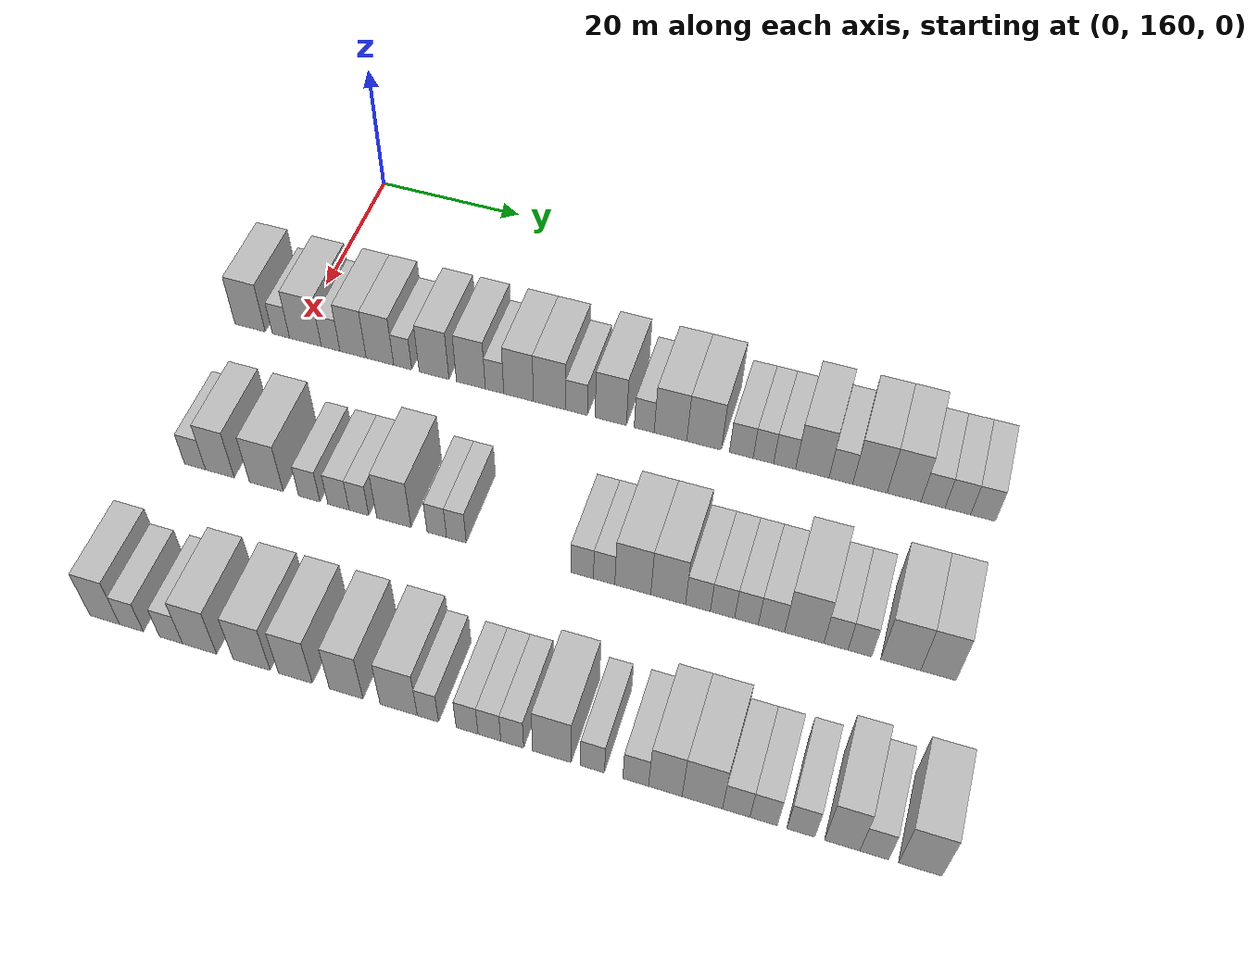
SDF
<sdf version="1.6">
 <world name="default">
  <model name="building_93">
   <static>1</static>
   <pose>25.0000 153.6073 0 0.000000 0.000000 0.000000</pose>
   <link name="link">
    <pose>0 0 4.50 0 0 0</pose>
    <collision name="collision"><geometry><box><size>10.0000 4.3053 9.0000</size></box></geometry></collision>
    <visual name="visual">
     <cast_shadows>0</cast_shadows>
     <geometry><box><size>10.0000 4.3053 9.0000</size></box></geometry>
     <material>
      <script>
       <uri>model://HANNAS_wall/materials/scripts</uri>
       <uri>model://HANNAS_wall/materials/textures</uri>
       <name>vrc/HANNAS_wall</name>
      </script>
     </material>
    </visual>
   </link>
  </model>
  <model name="building_94">
   <static>1</static>
   <pose>25.0000 157.9676 0 0.000000 0.000000 0.000000</pose>
   <link name="link">
    <pose>0 0 3.00 0 0 0</pose>
    <collision name="collision"><geometry><box><size>10.0000 2.4155 6.0000</size></box></geometry></collision>
    <visual name="visual">
     <cast_shadows>0</cast_shadows>
     <geometry><box><size>10.0000 2.4155 6.0000</size></box></geometry>
     <material>
      <script>
       <uri>model://HANNAS_wall/materials/scripts</uri>
       <uri>model://HANNAS_wall/materials/textures</uri>
       <name>vrc/HANNAS_wall</name>
      </script>
     </material>
    </visual>
   </link>
  </model>
  <model name="building_95">
   <static>1</static>
   <pose>25.0000 161.3960 0 0.000000 0.000000 0.000000</pose>
   <link name="link">
    <pose>0 0 4.50 0 0 0</pose>
    <collision name="collision"><geometry><box><size>10.0000 4.4412 9.0000</size></box></geometry></collision>
    <visual name="visual">
     <cast_shadows>0</cast_shadows>
     <geometry><box><size>10.0000 4.4412 9.0000</size></box></geometry>
     <material>
      <script>
       <uri>model://HANNAS_wall/materials/scripts</uri>
       <uri>model://HANNAS_wall/materials/textures</uri>
       <name>vrc/HANNAS_wall</name>
      </script>
     </material>
    </visual>
   </link>
  </model>
  <model name="building_96">
   <static>1</static>
   <pose>25.0000 164.9149 0 0.000000 0.000000 0.000000</pose>
   <link name="link">
    <pose>0 0 3.00 0 0 0</pose>
    <collision name="collision"><geometry><box><size>10.0000 2.5966 6.0000</size></box></geometry></collision>
    <visual name="visual">
     <cast_shadows>0</cast_shadows>
     <geometry><box><size>10.0000 2.5966 6.0000</size></box></geometry>
     <material>
      <script>
       <uri>model://HANNAS_wall/materials/scripts</uri>
       <uri>model://HANNAS_wall/materials/textures</uri>
       <name>vrc/HANNAS_wall</name>
      </script>
     </material>
    </visual>
   </link>
  </model>
  <model name="building_97">
   <static>1</static>
   <pose>25.0000 168.0224 0 0.000000 0.000000 0.000000</pose>
   <link name="link">
    <pose>0 0 4.50 0 0 0</pose>
    <collision name="collision"><geometry><box><size>10.0000 3.6184 9.0000</size></box></geometry></collision>
    <visual name="visual">
     <cast_shadows>0</cast_shadows>
     <geometry><box><size>10.0000 3.6184 9.0000</size></box></geometry>
     <material>
      <script>
       <uri>model://HANNAS_wall/materials/scripts</uri>
       <uri>model://HANNAS_wall/materials/textures</uri>
       <name>vrc/HANNAS_wall</name>
      </script>
     </material>
    </visual>
   </link>
  </model>
  <model name="building_98">
   <static>1</static>
   <pose>25.0000 171.7162 0 0.000000 0.000000 0.000000</pose>
   <link name="link">
    <pose>0 0 4.50 0 0 0</pose>
    <collision name="collision"><geometry><box><size>10.0000 3.7693 9.0000</size></box></geometry></collision>
    <visual name="visual">
     <cast_shadows>0</cast_shadows>
     <geometry><box><size>10.0000 3.7693 9.0000</size></box></geometry>
     <material>
      <script>
       <uri>model://HANNAS_wall/materials/scripts</uri>
       <uri>model://HANNAS_wall/materials/textures</uri>
       <name>vrc/HANNAS_wall</name>
      </script>
     </material>
    </visual>
   </link>
  </model>
  <model name="building_99">
   <static>1</static>
   <pose>25.0000 174.8299 0 0.000000 0.000000 0.000000</pose>
   <link name="link">
    <pose>0 0 3.00 0 0 0</pose>
    <collision name="collision"><geometry><box><size>10.0000 2.4581 6.0000</size></box></geometry></collision>
    <visual name="visual">
     <cast_shadows>0</cast_shadows>
     <geometry><box><size>10.0000 2.4581 6.0000</size></box></geometry>
     <material>
      <script>
       <uri>model://HANNAS_wall/materials/scripts</uri>
       <uri>model://HANNAS_wall/materials/textures</uri>
       <name>vrc/HANNAS_wall</name>
      </script>
     </material>
    </visual>
   </link>
  </model>
  <model name="building_100">
   <static>1</static>
   <pose>25.0000 179.0702 0 0.000000 0.000000 0.000000</pose>
   <link name="link">
    <pose>0 0 4.50 0 0 0</pose>
    <collision name="collision"><geometry><box><size>10.0000 4.0226 9.0000</size></box></geometry></collision>
    <visual name="visual">
     <cast_shadows>0</cast_shadows>
     <geometry><box><size>10.0000 4.0226 9.0000</size></box></geometry>
     <material>
      <script>
       <uri>model://HANNAS_wall/materials/scripts</uri>
       <uri>model://HANNAS_wall/materials/textures</uri>
       <name>vrc/HANNAS_wall</name>
      </script>
     </material>
    </visual>
   </link>
  </model>
  <model name="building_101">
   <static>1</static>
   <pose>25.0000 184.0114 0 0.000000 0.000000 0.000000</pose>
   <link name="link">
    <pose>0 0 4.50 0 0 0</pose>
    <collision name="collision"><geometry><box><size>10.0000 3.8598 9.0000</size></box></geometry></collision>
    <visual name="visual">
     <cast_shadows>0</cast_shadows>
     <geometry><box><size>10.0000 3.8598 9.0000</size></box></geometry>
     <material>
      <script>
       <uri>model://HANNAS_wall/materials/scripts</uri>
       <uri>model://HANNAS_wall/materials/textures</uri>
       <name>vrc/HANNAS_wall</name>
      </script>
     </material>
    </visual>
   </link>
  </model>
  <model name="building_102">
   <static>1</static>
   <pose>25.0000 187.1695 0 0.000000 0.000000 0.000000</pose>
   <link name="link">
    <pose>0 0 3.00 0 0 0</pose>
    <collision name="collision"><geometry><box><size>10.0000 2.4564 6.0000</size></box></geometry></collision>
    <visual name="visual">
     <cast_shadows>0</cast_shadows>
     <geometry><box><size>10.0000 2.4564 6.0000</size></box></geometry>
     <material>
      <script>
       <uri>model://HANNAS_wall/materials/scripts</uri>
       <uri>model://HANNAS_wall/materials/textures</uri>
       <name>vrc/HANNAS_wall</name>
      </script>
     </material>
    </visual>
   </link>
  </model>
  <model name="building_103">
   <static>1</static>
   <pose>25.0000 190.3546 0 0.000000 0.000000 0.000000</pose>
   <link name="link">
    <pose>0 0 4.50 0 0 0</pose>
    <collision name="collision"><geometry><box><size>10.0000 3.9138 9.0000</size></box></geometry></collision>
    <visual name="visual">
     <cast_shadows>0</cast_shadows>
     <geometry><box><size>10.0000 3.9138 9.0000</size></box></geometry>
     <material>
      <script>
       <uri>model://HANNAS_wall/materials/scripts</uri>
       <uri>model://HANNAS_wall/materials/textures</uri>
       <name>vrc/HANNAS_wall</name>
      </script>
     </material>
    </visual>
   </link>
  </model>
  <model name="building_104">
   <static>1</static>
   <pose>25.0000 194.4330 0 0.000000 0.000000 0.000000</pose>
   <link name="link">
    <pose>0 0 4.50 0 0 0</pose>
    <collision name="collision"><geometry><box><size>10.0000 4.2428 9.0000</size></box></geometry></collision>
    <visual name="visual">
     <cast_shadows>0</cast_shadows>
     <geometry><box><size>10.0000 4.2428 9.0000</size></box></geometry>
     <material>
      <script>
       <uri>model://HANNAS_wall/materials/scripts</uri>
       <uri>model://HANNAS_wall/materials/textures</uri>
       <name>vrc/HANNAS_wall</name>
      </script>
     </material>
    </visual>
   </link>
  </model>
  <model name="building_105">
   <static>1</static>
   <pose>25.0000 197.9500 0 0.000000 0.000000 0.000000</pose>
   <link name="link">
    <pose>0 0 3.00 0 0 0</pose>
    <collision name="collision"><geometry><box><size>10.0000 2.7911 6.0000</size></box></geometry></collision>
    <visual name="visual">
     <cast_shadows>0</cast_shadows>
     <geometry><box><size>10.0000 2.7911 6.0000</size></box></geometry>
     <material>
      <script>
       <uri>model://HANNAS_wall/materials/scripts</uri>
       <uri>model://HANNAS_wall/materials/textures</uri>
       <name>vrc/HANNAS_wall</name>
      </script>
     </material>
    </visual>
   </link>
  </model>
  <model name="building_106">
   <static>1</static>
   <pose>25.0000 202.3600 0 0.000000 0.000000 0.000000</pose>
   <link name="link">
    <pose>0 0 4.50 0 0 0</pose>
    <collision name="collision"><geometry><box><size>10.0000 4.0289 9.0000</size></box></geometry></collision>
    <visual name="visual">
     <cast_shadows>0</cast_shadows>
     <geometry><box><size>10.0000 4.0289 9.0000</size></box></geometry>
     <material>
      <script>
       <uri>model://HANNAS_wall/materials/scripts</uri>
       <uri>model://HANNAS_wall/materials/textures</uri>
       <name>vrc/HANNAS_wall</name>
      </script>
     </material>
    </visual>
   </link>
  </model>
  <model name="building_107">
   <static>1</static>
   <pose>25.0000 206.6499 0 0.000000 0.000000 0.000000</pose>
   <link name="link">
    <pose>0 0 3.00 0 0 0</pose>
    <collision name="collision"><geometry><box><size>10.0000 2.5511 6.0000</size></box></geometry></collision>
    <visual name="visual">
     <cast_shadows>0</cast_shadows>
     <geometry><box><size>10.0000 2.5511 6.0000</size></box></geometry>
     <material>
      <script>
       <uri>model://HANNAS_wall/materials/scripts</uri>
       <uri>model://HANNAS_wall/materials/textures</uri>
       <name>vrc/HANNAS_wall</name>
      </script>
     </material>
    </visual>
   </link>
  </model>
  <model name="building_108">
   <static>1</static>
   <pose>25.0000 209.9910 0 0.000000 0.000000 0.000000</pose>
   <link name="link">
    <pose>0 0 4.50 0 0 0</pose>
    <collision name="collision"><geometry><box><size>10.0000 4.1310 9.0000</size></box></geometry></collision>
    <visual name="visual">
     <cast_shadows>0</cast_shadows>
     <geometry><box><size>10.0000 4.1310 9.0000</size></box></geometry>
     <material>
      <script>
       <uri>model://HANNAS_wall/materials/scripts</uri>
       <uri>model://HANNAS_wall/materials/textures</uri>
       <name>vrc/HANNAS_wall</name>
      </script>
     </material>
    </visual>
   </link>
  </model>
  <model name="building_109">
   <static>1</static>
   <pose>25.0000 214.2285 0 0.000000 0.000000 0.000000</pose>
   <link name="link">
    <pose>0 0 4.50 0 0 0</pose>
    <collision name="collision"><geometry><box><size>10.0000 4.3439 9.0000</size></box></geometry></collision>
    <visual name="visual">
     <cast_shadows>0</cast_shadows>
     <geometry><box><size>10.0000 4.3439 9.0000</size></box></geometry>
     <material>
      <script>
       <uri>model://HANNAS_wall/materials/scripts</uri>
       <uri>model://HANNAS_wall/materials/textures</uri>
       <name>vrc/HANNAS_wall</name>
      </script>
     </material>
    </visual>
   </link>
  </model>
  <model name="building_110">
   <static>1</static>
   <pose>25.0000 218.8751 0 0.000000 0.000000 0.000000</pose>
   <link name="link">
    <pose>0 0 3.00 0 0 0</pose>
    <collision name="collision"><geometry><box><size>10.0000 2.9495 6.0000</size></box></geometry></collision>
    <visual name="visual">
     <cast_shadows>0</cast_shadows>
     <geometry><box><size>10.0000 2.9495 6.0000</size></box></geometry>
     <material>
      <script>
       <uri>model://HANNAS_wall/materials/scripts</uri>
       <uri>model://HANNAS_wall/materials/textures</uri>
       <name>vrc/HANNAS_wall</name>
      </script>
     </material>
    </visual>
   </link>
  </model>
  <model name="building_111">
   <static>1</static>
   <pose>25.0000 221.6177 0 0.000000 0.000000 0.000000</pose>
   <link name="link">
    <pose>0 0 3.00 0 0 0</pose>
    <collision name="collision"><geometry><box><size>10.0000 2.5356 6.0000</size></box></geometry></collision>
    <visual name="visual">
     <cast_shadows>0</cast_shadows>
     <geometry><box><size>10.0000 2.5356 6.0000</size></box></geometry>
     <material>
      <script>
       <uri>model://HANNAS_wall/materials/scripts</uri>
       <uri>model://HANNAS_wall/materials/textures</uri>
       <name>vrc/HANNAS_wall</name>
      </script>
     </material>
    </visual>
   </link>
  </model>
  <model name="building_112">
   <static>1</static>
   <pose>25.0000 224.2377 0 0.000000 0.000000 0.000000</pose>
   <link name="link">
    <pose>0 0 3.00 0 0 0</pose>
    <collision name="collision"><geometry><box><size>10.0000 2.7045 6.0000</size></box></geometry></collision>
    <visual name="visual">
     <cast_shadows>0</cast_shadows>
     <geometry><box><size>10.0000 2.7045 6.0000</size></box></geometry>
     <material>
      <script>
       <uri>model://HANNAS_wall/materials/scripts</uri>
       <uri>model://HANNAS_wall/materials/textures</uri>
       <name>vrc/HANNAS_wall</name>
      </script>
     </material>
    </visual>
   </link>
  </model>
  <model name="building_113">
   <static>1</static>
   <pose>25.0000 227.6396 0 0.000000 0.000000 0.000000</pose>
   <link name="link">
    <pose>0 0 4.50 0 0 0</pose>
    <collision name="collision"><geometry><box><size>10.0000 4.0994 9.0000</size></box></geometry></collision>
    <visual name="visual">
     <cast_shadows>0</cast_shadows>
     <geometry><box><size>10.0000 4.0994 9.0000</size></box></geometry>
     <material>
      <script>
       <uri>model://HANNAS_wall/materials/scripts</uri>
       <uri>model://HANNAS_wall/materials/textures</uri>
       <name>vrc/HANNAS_wall</name>
      </script>
     </material>
    </visual>
   </link>
  </model>
  <model name="building_114">
   <static>1</static>
   <pose>25.0000 231.1255 0 0.000000 0.000000 0.000000</pose>
   <link name="link">
    <pose>0 0 3.00 0 0 0</pose>
    <collision name="collision"><geometry><box><size>10.0000 2.8724 6.0000</size></box></geometry></collision>
    <visual name="visual">
     <cast_shadows>0</cast_shadows>
     <geometry><box><size>10.0000 2.8724 6.0000</size></box></geometry>
     <material>
      <script>
       <uri>model://HANNAS_wall/materials/scripts</uri>
       <uri>model://HANNAS_wall/materials/textures</uri>
       <name>vrc/HANNAS_wall</name>
      </script>
     </material>
    </visual>
   </link>
  </model>
  <model name="building_115">
   <static>1</static>
   <pose>25.0000 234.6354 0 0.000000 0.000000 0.000000</pose>
   <link name="link">
    <pose>0 0 4.50 0 0 0</pose>
    <collision name="collision"><geometry><box><size>10.0000 4.1475 9.0000</size></box></geometry></collision>
    <visual name="visual">
     <cast_shadows>0</cast_shadows>
     <geometry><box><size>10.0000 4.1475 9.0000</size></box></geometry>
     <material>
      <script>
       <uri>model://HANNAS_wall/materials/scripts</uri>
       <uri>model://HANNAS_wall/materials/textures</uri>
       <name>vrc/HANNAS_wall</name>
      </script>
     </material>
    </visual>
   </link>
  </model>
  <model name="building_116">
   <static>1</static>
   <pose>25.0000 238.7324 0 0.000000 0.000000 0.000000</pose>
   <link name="link">
    <pose>0 0 4.50 0 0 0</pose>
    <collision name="collision"><geometry><box><size>10.0000 4.0464 9.0000</size></box></geometry></collision>
    <visual name="visual">
     <cast_shadows>0</cast_shadows>
     <geometry><box><size>10.0000 4.0464 9.0000</size></box></geometry>
     <material>
      <script>
       <uri>model://HANNAS_wall/materials/scripts</uri>
       <uri>model://HANNAS_wall/materials/textures</uri>
       <name>vrc/HANNAS_wall</name>
      </script>
     </material>
    </visual>
   </link>
  </model>
  <model name="building_117">
   <static>1</static>
   <pose>25.0000 242.1766 0 0.000000 0.000000 0.000000</pose>
   <link name="link">
    <pose>0 0 3.00 0 0 0</pose>
    <collision name="collision"><geometry><box><size>10.0000 2.8420 6.0000</size></box></geometry></collision>
    <visual name="visual">
     <cast_shadows>0</cast_shadows>
     <geometry><box><size>10.0000 2.8420 6.0000</size></box></geometry>
     <material>
      <script>
       <uri>model://HANNAS_wall/materials/scripts</uri>
       <uri>model://HANNAS_wall/materials/textures</uri>
       <name>vrc/HANNAS_wall</name>
      </script>
     </material>
    </visual>
   </link>
  </model>
  <model name="building_118">
   <static>1</static>
   <pose>25.0000 245.0969 0 0.000000 0.000000 0.000000</pose>
   <link name="link">
    <pose>0 0 3.00 0 0 0</pose>
    <collision name="collision"><geometry><box><size>10.0000 2.9987 6.0000</size></box></geometry></collision>
    <visual name="visual">
     <cast_shadows>0</cast_shadows>
     <geometry><box><size>10.0000 2.9987 6.0000</size></box></geometry>
     <material>
      <script>
       <uri>model://HANNAS_wall/materials/scripts</uri>
       <uri>model://HANNAS_wall/materials/textures</uri>
       <name>vrc/HANNAS_wall</name>
      </script>
     </material>
    </visual>
   </link>
  </model>
  <model name="building_119">
   <static>1</static>
   <pose>25.0000 248.0613 0 0.000000 0.000000 0.000000</pose>
   <link name="link">
    <pose>0 0 3.00 0 0 0</pose>
    <collision name="collision"><geometry><box><size>10.0000 2.9300 6.0000</size></box></geometry></collision>
    <visual name="visual">
     <cast_shadows>0</cast_shadows>
     <geometry><box><size>10.0000 2.9300 6.0000</size></box></geometry>
     <material>
      <script>
       <uri>model://HANNAS_wall/materials/scripts</uri>
       <uri>model://HANNAS_wall/materials/textures</uri>
       <name>vrc/HANNAS_wall</name>
      </script>
     </material>
    </visual>
   </link>
  </model>
  <model name="building_217">
   <static>1</static>
   <pose>47.0000 156.7697 0 0.000000 0.000000 0.000000</pose>
   <link name="link">
    <pose>0 0 3.00 0 0 0</pose>
    <collision name="collision"><geometry><box><size>10.0000 2.7998 6.0000</size></box></geometry></collision>
    <visual name="visual">
     <cast_shadows>0</cast_shadows>
     <geometry><box><size>10.0000 2.7998 6.0000</size></box></geometry>
     <material>
      <script>
       <uri>model://HANNAS_wall/materials/scripts</uri>
       <uri>model://HANNAS_wall/materials/textures</uri>
       <name>vrc/HANNAS_wall</name>
      </script>
     </material>
    </visual>
   </link>
  </model>
  <model name="building_218">
   <static>1</static>
   <pose>47.0000 160.0620 0 0.000000 0.000000 0.000000</pose>
   <link name="link">
    <pose>0 0 4.50 0 0 0</pose>
    <collision name="collision"><geometry><box><size>10.0000 3.7848 9.0000</size></box></geometry></collision>
    <visual name="visual">
     <cast_shadows>0</cast_shadows>
     <geometry><box><size>10.0000 3.7848 9.0000</size></box></geometry>
     <material>
      <script>
       <uri>model://HANNAS_wall/materials/scripts</uri>
       <uri>model://HANNAS_wall/materials/textures</uri>
       <name>vrc/HANNAS_wall</name>
      </script>
     </material>
    </visual>
   </link>
  </model>
  <model name="building_219">
   <static>1</static>
   <pose>47.0000 166.1638 0 0.000000 0.000000 0.000000</pose>
   <link name="link">
    <pose>0 0 4.50 0 0 0</pose>
    <collision name="collision"><geometry><box><size>10.0000 4.4187 9.0000</size></box></geometry></collision>
    <visual name="visual">
     <cast_shadows>0</cast_shadows>
     <geometry><box><size>10.0000 4.4187 9.0000</size></box></geometry>
     <material>
      <script>
       <uri>model://HANNAS_wall/materials/scripts</uri>
       <uri>model://HANNAS_wall/materials/textures</uri>
       <name>vrc/HANNAS_wall</name>
      </script>
     </material>
    </visual>
   </link>
  </model>
  <model name="building_220">
   <static>1</static>
   <pose>47.0000 171.7502 0 0.000000 0.000000 0.000000</pose>
   <link name="link">
    <pose>0 0 3.00 0 0 0</pose>
    <collision name="collision"><geometry><box><size>10.0000 2.7543 6.0000</size></box></geometry></collision>
    <visual name="visual">
     <cast_shadows>0</cast_shadows>
     <geometry><box><size>10.0000 2.7543 6.0000</size></box></geometry>
     <material>
      <script>
       <uri>model://HANNAS_wall/materials/scripts</uri>
       <uri>model://HANNAS_wall/materials/textures</uri>
       <name>vrc/HANNAS_wall</name>
      </script>
     </material>
    </visual>
   </link>
  </model>
  <model name="building_221">
   <static>1</static>
   <pose>47.0000 175.4920 0 0.000000 0.000000 0.000000</pose>
   <link name="link">
    <pose>0 0 3.00 0 0 0</pose>
    <collision name="collision"><geometry><box><size>10.0000 2.7292 6.0000</size></box></geometry></collision>
    <visual name="visual">
     <cast_shadows>0</cast_shadows>
     <geometry><box><size>10.0000 2.7292 6.0000</size></box></geometry>
     <material>
      <script>
       <uri>model://HANNAS_wall/materials/scripts</uri>
       <uri>model://HANNAS_wall/materials/textures</uri>
       <name>vrc/HANNAS_wall</name>
      </script>
     </material>
    </visual>
   </link>
  </model>
  <model name="building_222">
   <static>1</static>
   <pose>47.0000 178.1100 0 0.000000 0.000000 0.000000</pose>
   <link name="link">
    <pose>0 0 3.00 0 0 0</pose>
    <collision name="collision"><geometry><box><size>10.0000 2.5068 6.0000</size></box></geometry></collision>
    <visual name="visual">
     <cast_shadows>0</cast_shadows>
     <geometry><box><size>10.0000 2.5068 6.0000</size></box></geometry>
     <material>
      <script>
       <uri>model://HANNAS_wall/materials/scripts</uri>
       <uri>model://HANNAS_wall/materials/textures</uri>
       <name>vrc/HANNAS_wall</name>
      </script>
     </material>
    </visual>
   </link>
  </model>
  <model name="building_223">
   <static>1</static>
   <pose>47.0000 182.5260 0 0.000000 0.000000 0.000000</pose>
   <link name="link">
    <pose>0 0 4.50 0 0 0</pose>
    <collision name="collision"><geometry><box><size>10.0000 4.3251 9.0000</size></box></geometry></collision>
    <visual name="visual">
     <cast_shadows>0</cast_shadows>
     <geometry><box><size>10.0000 4.3251 9.0000</size></box></geometry>
     <material>
      <script>
       <uri>model://HANNAS_wall/materials/scripts</uri>
       <uri>model://HANNAS_wall/materials/textures</uri>
       <name>vrc/HANNAS_wall</name>
      </script>
     </material>
    </visual>
   </link>
  </model>
  <model name="building_224">
   <static>1</static>
   <pose>47.0000 187.9058 0 0.000000 0.000000 0.000000</pose>
   <link name="link">
    <pose>0 0 3.00 0 0 0</pose>
    <collision name="collision"><geometry><box><size>10.0000 2.4345 6.0000</size></box></geometry></collision>
    <visual name="visual">
     <cast_shadows>0</cast_shadows>
     <geometry><box><size>10.0000 2.4345 6.0000</size></box></geometry>
     <material>
      <script>
       <uri>model://HANNAS_wall/materials/scripts</uri>
       <uri>model://HANNAS_wall/materials/textures</uri>
       <name>vrc/HANNAS_wall</name>
      </script>
     </material>
    </visual>
   </link>
  </model>
  <model name="building_225">
   <static>1</static>
   <pose>47.0000 190.3425 0 0.000000 0.000000 0.000000</pose>
   <link name="link">
    <pose>0 0 3.00 0 0 0</pose>
    <collision name="collision"><geometry><box><size>10.0000 2.4389 6.0000</size></box></geometry></collision>
    <visual name="visual">
     <cast_shadows>0</cast_shadows>
     <geometry><box><size>10.0000 2.4389 6.0000</size></box></geometry>
     <material>
      <script>
       <uri>model://HANNAS_wall/materials/scripts</uri>
       <uri>model://HANNAS_wall/materials/textures</uri>
       <name>vrc/HANNAS_wall</name>
      </script>
     </material>
    </visual>
   </link>
  </model>
  <model name="building_226">
   <static>1</static>
   <pose>47.0000 205.6538 0 0.000000 0.000000 0.000000</pose>
   <link name="link">
    <pose>0 0 3.00 0 0 0</pose>
    <collision name="collision"><geometry><box><size>10.0000 2.7279 6.0000</size></box></geometry></collision>
    <visual name="visual">
     <cast_shadows>0</cast_shadows>
     <geometry><box><size>10.0000 2.7279 6.0000</size></box></geometry>
     <material>
      <script>
       <uri>model://HANNAS_wall/materials/scripts</uri>
       <uri>model://HANNAS_wall/materials/textures</uri>
       <name>vrc/HANNAS_wall</name>
      </script>
     </material>
    </visual>
   </link>
  </model>
  <model name="building_227">
   <static>1</static>
   <pose>47.0000 208.2862 0 0.000000 0.000000 0.000000</pose>
   <link name="link">
    <pose>0 0 3.00 0 0 0</pose>
    <collision name="collision"><geometry><box><size>10.0000 2.5370 6.0000</size></box></geometry></collision>
    <visual name="visual">
     <cast_shadows>0</cast_shadows>
     <geometry><box><size>10.0000 2.5370 6.0000</size></box></geometry>
     <material>
      <script>
       <uri>model://HANNAS_wall/materials/scripts</uri>
       <uri>model://HANNAS_wall/materials/textures</uri>
       <name>vrc/HANNAS_wall</name>
      </script>
     </material>
    </visual>
   </link>
  </model>
  <model name="building_228">
   <static>1</static>
   <pose>47.0000 211.6857 0 0.000000 0.000000 0.000000</pose>
   <link name="link">
    <pose>0 0 4.50 0 0 0</pose>
    <collision name="collision"><geometry><box><size>10.0000 4.2620 9.0000</size></box></geometry></collision>
    <visual name="visual">
     <cast_shadows>0</cast_shadows>
     <geometry><box><size>10.0000 4.2620 9.0000</size></box></geometry>
     <material>
      <script>
       <uri>model://HANNAS_wall/materials/scripts</uri>
       <uri>model://HANNAS_wall/materials/textures</uri>
       <name>vrc/HANNAS_wall</name>
      </script>
     </material>
    </visual>
   </link>
  </model>
  <model name="building_229">
   <static>1</static>
   <pose>47.0000 215.8473 0 0.000000 0.000000 0.000000</pose>
   <link name="link">
    <pose>0 0 4.50 0 0 0</pose>
    <collision name="collision"><geometry><box><size>10.0000 4.0613 9.0000</size></box></geometry></collision>
    <visual name="visual">
     <cast_shadows>0</cast_shadows>
     <geometry><box><size>10.0000 4.0613 9.0000</size></box></geometry>
     <material>
      <script>
       <uri>model://HANNAS_wall/materials/scripts</uri>
       <uri>model://HANNAS_wall/materials/textures</uri>
       <name>vrc/HANNAS_wall</name>
      </script>
     </material>
    </visual>
   </link>
  </model>
  <model name="building_230">
   <static>1</static>
   <pose>47.0000 219.3256 0 0.000000 0.000000 0.000000</pose>
   <link name="link">
    <pose>0 0 3.00 0 0 0</pose>
    <collision name="collision"><geometry><box><size>10.0000 2.8952 6.0000</size></box></geometry></collision>
    <visual name="visual">
     <cast_shadows>0</cast_shadows>
     <geometry><box><size>10.0000 2.8952 6.0000</size></box></geometry>
     <material>
      <script>
       <uri>model://HANNAS_wall/materials/scripts</uri>
       <uri>model://HANNAS_wall/materials/textures</uri>
       <name>vrc/HANNAS_wall</name>
      </script>
     </material>
    </visual>
   </link>
  </model>
  <model name="building_231">
   <static>1</static>
   <pose>47.0000 222.1787 0 0.000000 0.000000 0.000000</pose>
   <link name="link">
    <pose>0 0 3.00 0 0 0</pose>
    <collision name="collision"><geometry><box><size>10.0000 2.8109 6.0000</size></box></geometry></collision>
    <visual name="visual">
     <cast_shadows>0</cast_shadows>
     <geometry><box><size>10.0000 2.8109 6.0000</size></box></geometry>
     <material>
      <script>
       <uri>model://HANNAS_wall/materials/scripts</uri>
       <uri>model://HANNAS_wall/materials/textures</uri>
       <name>vrc/HANNAS_wall</name>
      </script>
     </material>
    </visual>
   </link>
  </model>
  <model name="building_232">
   <static>1</static>
   <pose>47.0000 224.9382 0 0.000000 0.000000 0.000000</pose>
   <link name="link">
    <pose>0 0 3.00 0 0 0</pose>
    <collision name="collision"><geometry><box><size>10.0000 2.7080 6.0000</size></box></geometry></collision>
    <visual name="visual">
     <cast_shadows>0</cast_shadows>
     <geometry><box><size>10.0000 2.7080 6.0000</size></box></geometry>
     <material>
      <script>
       <uri>model://HANNAS_wall/materials/scripts</uri>
       <uri>model://HANNAS_wall/materials/textures</uri>
       <name>vrc/HANNAS_wall</name>
      </script>
     </material>
    </visual>
   </link>
  </model>
  <model name="building_233">
   <static>1</static>
   <pose>47.0000 227.7920 0 0.000000 0.000000 0.000000</pose>
   <link name="link">
    <pose>0 0 3.00 0 0 0</pose>
    <collision name="collision"><geometry><box><size>10.0000 2.9997 6.0000</size></box></geometry></collision>
    <visual name="visual">
     <cast_shadows>0</cast_shadows>
     <geometry><box><size>10.0000 2.9997 6.0000</size></box></geometry>
     <material>
      <script>
       <uri>model://HANNAS_wall/materials/scripts</uri>
       <uri>model://HANNAS_wall/materials/textures</uri>
       <name>vrc/HANNAS_wall</name>
      </script>
     </material>
    </visual>
   </link>
  </model>
  <model name="building_234">
   <static>1</static>
   <pose>47.0000 231.5175 0 0.000000 0.000000 0.000000</pose>
   <link name="link">
    <pose>0 0 4.50 0 0 0</pose>
    <collision name="collision"><geometry><box><size>10.0000 4.4513 9.0000</size></box></geometry></collision>
    <visual name="visual">
     <cast_shadows>0</cast_shadows>
     <geometry><box><size>10.0000 4.4513 9.0000</size></box></geometry>
     <material>
      <script>
       <uri>model://HANNAS_wall/materials/scripts</uri>
       <uri>model://HANNAS_wall/materials/textures</uri>
       <name>vrc/HANNAS_wall</name>
      </script>
     </material>
    </visual>
   </link>
  </model>
  <model name="building_235">
   <static>1</static>
   <pose>47.0000 235.0952 0 0.000000 0.000000 0.000000</pose>
   <link name="link">
    <pose>0 0 3.00 0 0 0</pose>
    <collision name="collision"><geometry><box><size>10.0000 2.7040 6.0000</size></box></geometry></collision>
    <visual name="visual">
     <cast_shadows>0</cast_shadows>
     <geometry><box><size>10.0000 2.7040 6.0000</size></box></geometry>
     <material>
      <script>
       <uri>model://HANNAS_wall/materials/scripts</uri>
       <uri>model://HANNAS_wall/materials/textures</uri>
       <name>vrc/HANNAS_wall</name>
      </script>
     </material>
    </visual>
   </link>
  </model>
  <model name="building_236">
   <static>1</static>
   <pose>47.0000 237.7770 0 0.000000 0.000000 0.000000</pose>
   <link name="link">
    <pose>0 0 3.00 0 0 0</pose>
    <collision name="collision"><geometry><box><size>10.0000 2.6598 6.0000</size></box></geometry></collision>
    <visual name="visual">
     <cast_shadows>0</cast_shadows>
     <geometry><box><size>10.0000 2.6598 6.0000</size></box></geometry>
     <material>
      <script>
       <uri>model://HANNAS_wall/materials/scripts</uri>
       <uri>model://HANNAS_wall/materials/textures</uri>
       <name>vrc/HANNAS_wall</name>
      </script>
     </material>
    </visual>
   </link>
  </model>
  <model name="building_237">
   <static>1</static>
   <pose>47.0000 242.3137 0 0.000000 0.000000 0.000000</pose>
   <link name="link">
    <pose>0 0 4.50 0 0 0</pose>
    <collision name="collision"><geometry><box><size>10.0000 4.4136 9.0000</size></box></geometry></collision>
    <visual name="visual">
     <cast_shadows>0</cast_shadows>
     <geometry><box><size>10.0000 4.4136 9.0000</size></box></geometry>
     <material>
      <script>
       <uri>model://HANNAS_wall/materials/scripts</uri>
       <uri>model://HANNAS_wall/materials/textures</uri>
       <name>vrc/HANNAS_wall</name>
      </script>
     </material>
    </visual>
   </link>
  </model>
  <model name="building_238">
   <static>1</static>
   <pose>47.0000 246.4556 0 0.000000 0.000000 0.000000</pose>
   <link name="link">
    <pose>0 0 4.50 0 0 0</pose>
    <collision name="collision"><geometry><box><size>10.0000 3.8701 9.0000</size></box></geometry></collision>
    <visual name="visual">
     <cast_shadows>0</cast_shadows>
     <geometry><box><size>10.0000 3.8701 9.0000</size></box></geometry>
     <material>
      <script>
       <uri>model://HANNAS_wall/materials/scripts</uri>
       <uri>model://HANNAS_wall/materials/textures</uri>
       <name>vrc/HANNAS_wall</name>
      </script>
     </material>
    </visual>
   </link>
  </model>
  <model name="building_339">
   <static>1</static>
   <pose>69.0000 156.6417 0 0.000000 0.000000 0.000000</pose>
   <link name="link">
    <pose>0 0 4.50 0 0 0</pose>
    <collision name="collision"><geometry><box><size>10.0000 3.7321 9.0000</size></box></geometry></collision>
    <visual name="visual">
     <cast_shadows>0</cast_shadows>
     <geometry><box><size>10.0000 3.7321 9.0000</size></box></geometry>
     <material>
      <script>
       <uri>model://HANNAS_wall/materials/scripts</uri>
       <uri>model://HANNAS_wall/materials/textures</uri>
       <name>vrc/HANNAS_wall</name>
      </script>
     </material>
    </visual>
   </link>
  </model>
  <model name="building_340">
   <static>1</static>
   <pose>69.0000 159.9676 0 0.000000 0.000000 0.000000</pose>
   <link name="link">
    <pose>0 0 3.00 0 0 0</pose>
    <collision name="collision"><geometry><box><size>10.0000 2.9197 6.0000</size></box></geometry></collision>
    <visual name="visual">
     <cast_shadows>0</cast_shadows>
     <geometry><box><size>10.0000 2.9197 6.0000</size></box></geometry>
     <material>
      <script>
       <uri>model://HANNAS_wall/materials/scripts</uri>
       <uri>model://HANNAS_wall/materials/textures</uri>
       <name>vrc/HANNAS_wall</name>
      </script>
     </material>
    </visual>
   </link>
  </model>
  <model name="building_341">
   <static>1</static>
   <pose>69.0000 164.8491 0 0.000000 0.000000 0.000000</pose>
   <link name="link">
    <pose>0 0 3.00 0 0 0</pose>
    <collision name="collision"><geometry><box><size>10.0000 2.8434 6.0000</size></box></geometry></collision>
    <visual name="visual">
     <cast_shadows>0</cast_shadows>
     <geometry><box><size>10.0000 2.8434 6.0000</size></box></geometry>
     <material>
      <script>
       <uri>model://HANNAS_wall/materials/scripts</uri>
       <uri>model://HANNAS_wall/materials/textures</uri>
       <name>vrc/HANNAS_wall</name>
      </script>
     </material>
    </visual>
   </link>
  </model>
  <model name="building_342">
   <static>1</static>
   <pose>69.0000 168.3528 0 0.000000 0.000000 0.000000</pose>
   <link name="link">
    <pose>0 0 4.50 0 0 0</pose>
    <collision name="collision"><geometry><box><size>10.0000 4.1639 9.0000</size></box></geometry></collision>
    <visual name="visual">
     <cast_shadows>0</cast_shadows>
     <geometry><box><size>10.0000 4.1639 9.0000</size></box></geometry>
     <material>
      <script>
       <uri>model://HANNAS_wall/materials/scripts</uri>
       <uri>model://HANNAS_wall/materials/textures</uri>
       <name>vrc/HANNAS_wall</name>
      </script>
     </material>
    </visual>
   </link>
  </model>
  <model name="building_343">
   <static>1</static>
   <pose>69.0000 174.6592 0 0.000000 0.000000 0.000000</pose>
   <link name="link">
    <pose>0 0 4.50 0 0 0</pose>
    <collision name="collision"><geometry><box><size>10.0000 4.4489 9.0000</size></box></geometry></collision>
    <visual name="visual">
     <cast_shadows>0</cast_shadows>
     <geometry><box><size>10.0000 4.4489 9.0000</size></box></geometry>
     <material>
      <script>
       <uri>model://HANNAS_wall/materials/scripts</uri>
       <uri>model://HANNAS_wall/materials/textures</uri>
       <name>vrc/HANNAS_wall</name>
      </script>
     </material>
    </visual>
   </link>
  </model>
  <model name="building_344">
   <static>1</static>
   <pose>69.0000 179.8968 0 0.000000 0.000000 0.000000</pose>
   <link name="link">
    <pose>0 0 4.50 0 0 0</pose>
    <collision name="collision"><geometry><box><size>10.0000 4.0262 9.0000</size></box></geometry></collision>
    <visual name="visual">
     <cast_shadows>0</cast_shadows>
     <geometry><box><size>10.0000 4.0262 9.0000</size></box></geometry>
     <material>
      <script>
       <uri>model://HANNAS_wall/materials/scripts</uri>
       <uri>model://HANNAS_wall/materials/textures</uri>
       <name>vrc/HANNAS_wall</name>
      </script>
     </material>
    </visual>
   </link>
  </model>
  <model name="building_345">
   <static>1</static>
   <pose>69.0000 185.8762 0 0.000000 0.000000 0.000000</pose>
   <link name="link">
    <pose>0 0 4.50 0 0 0</pose>
    <collision name="collision"><geometry><box><size>10.0000 3.9327 9.0000</size></box></geometry></collision>
    <visual name="visual">
     <cast_shadows>0</cast_shadows>
     <geometry><box><size>10.0000 3.9327 9.0000</size></box></geometry>
     <material>
      <script>
       <uri>model://HANNAS_wall/materials/scripts</uri>
       <uri>model://HANNAS_wall/materials/textures</uri>
       <name>vrc/HANNAS_wall</name>
      </script>
     </material>
    </visual>
   </link>
  </model>
  <model name="building_346">
   <static>1</static>
   <pose>69.0000 191.9946 0 0.000000 0.000000 0.000000</pose>
   <link name="link">
    <pose>0 0 4.50 0 0 0</pose>
    <collision name="collision"><geometry><box><size>10.0000 4.3042 9.0000</size></box></geometry></collision>
    <visual name="visual">
     <cast_shadows>0</cast_shadows>
     <geometry><box><size>10.0000 4.3042 9.0000</size></box></geometry>
     <material>
      <script>
       <uri>model://HANNAS_wall/materials/scripts</uri>
       <uri>model://HANNAS_wall/materials/textures</uri>
       <name>vrc/HANNAS_wall</name>
      </script>
     </material>
    </visual>
   </link>
  </model>
  <model name="building_347">
   <static>1</static>
   <pose>69.0000 195.3660 0 0.000000 0.000000 0.000000</pose>
   <link name="link">
    <pose>0 0 3.00 0 0 0</pose>
    <collision name="collision"><geometry><box><size>10.0000 2.4385 6.0000</size></box></geometry></collision>
    <visual name="visual">
     <cast_shadows>0</cast_shadows>
     <geometry><box><size>10.0000 2.4385 6.0000</size></box></geometry>
     <material>
      <script>
       <uri>model://HANNAS_wall/materials/scripts</uri>
       <uri>model://HANNAS_wall/materials/textures</uri>
       <name>vrc/HANNAS_wall</name>
      </script>
     </material>
    </visual>
   </link>
  </model>
  <model name="building_348">
   <static>1</static>
   <pose>69.0000 199.8240 0 0.000000 0.000000 0.000000</pose>
   <link name="link">
    <pose>0 0 3.00 0 0 0</pose>
    <collision name="collision"><geometry><box><size>10.0000 2.4776 6.0000</size></box></geometry></collision>
    <visual name="visual">
     <cast_shadows>0</cast_shadows>
     <geometry><box><size>10.0000 2.4776 6.0000</size></box></geometry>
     <material>
      <script>
       <uri>model://HANNAS_wall/materials/scripts</uri>
       <uri>model://HANNAS_wall/materials/textures</uri>
       <name>vrc/HANNAS_wall</name>
      </script>
     </material>
    </visual>
   </link>
  </model>
  <model name="building_349">
   <static>1</static>
   <pose>69.0000 202.3457 0 0.000000 0.000000 0.000000</pose>
   <link name="link">
    <pose>0 0 3.00 0 0 0</pose>
    <collision name="collision"><geometry><box><size>10.0000 2.5659 6.0000</size></box></geometry></collision>
    <visual name="visual">
     <cast_shadows>0</cast_shadows>
     <geometry><box><size>10.0000 2.5659 6.0000</size></box></geometry>
     <material>
      <script>
       <uri>model://HANNAS_wall/materials/scripts</uri>
       <uri>model://HANNAS_wall/materials/textures</uri>
       <name>vrc/HANNAS_wall</name>
      </script>
     </material>
    </visual>
   </link>
  </model>
  <model name="building_350">
   <static>1</static>
   <pose>69.0000 204.9101 0 0.000000 0.000000 0.000000</pose>
   <link name="link">
    <pose>0 0 3.00 0 0 0</pose>
    <collision name="collision"><geometry><box><size>10.0000 2.5628 6.0000</size></box></geometry></collision>
    <visual name="visual">
     <cast_shadows>0</cast_shadows>
     <geometry><box><size>10.0000 2.5628 6.0000</size></box></geometry>
     <material>
      <script>
       <uri>model://HANNAS_wall/materials/scripts</uri>
       <uri>model://HANNAS_wall/materials/textures</uri>
       <name>vrc/HANNAS_wall</name>
      </script>
     </material>
    </visual>
   </link>
  </model>
  <model name="building_351">
   <static>1</static>
   <pose>69.0000 209.3323 0 0.000000 0.000000 0.000000</pose>
   <link name="link">
    <pose>0 0 4.50 0 0 0</pose>
    <collision name="collision"><geometry><box><size>10.0000 4.2816 9.0000</size></box></geometry></collision>
    <visual name="visual">
     <cast_shadows>0</cast_shadows>
     <geometry><box><size>10.0000 4.2816 9.0000</size></box></geometry>
     <material>
      <script>
       <uri>model://HANNAS_wall/materials/scripts</uri>
       <uri>model://HANNAS_wall/materials/textures</uri>
       <name>vrc/HANNAS_wall</name>
      </script>
     </material>
    </visual>
   </link>
  </model>
  <model name="building_352">
   <static>1</static>
   <pose>69.0000 213.7926 0 0.000000 0.000000 0.000000</pose>
   <link name="link">
    <pose>0 0 3.00 0 0 0</pose>
    <collision name="collision"><geometry><box><size>10.0000 2.6390 6.0000</size></box></geometry></collision>
    <visual name="visual">
     <cast_shadows>0</cast_shadows>
     <geometry><box><size>10.0000 2.6390 6.0000</size></box></geometry>
     <material>
      <script>
       <uri>model://HANNAS_wall/materials/scripts</uri>
       <uri>model://HANNAS_wall/materials/textures</uri>
       <name>vrc/HANNAS_wall</name>
      </script>
     </material>
    </visual>
   </link>
  </model>
  <model name="building_353">
   <static>1</static>
   <pose>69.0000 218.5049 0 0.000000 0.000000 0.000000</pose>
   <link name="link">
    <pose>0 0 3.00 0 0 0</pose>
    <collision name="collision"><geometry><box><size>10.0000 2.7855 6.0000</size></box></geometry></collision>
    <visual name="visual">
     <cast_shadows>0</cast_shadows>
     <geometry><box><size>10.0000 2.7855 6.0000</size></box></geometry>
     <material>
      <script>
       <uri>model://HANNAS_wall/materials/scripts</uri>
       <uri>model://HANNAS_wall/materials/textures</uri>
       <name>vrc/HANNAS_wall</name>
      </script>
     </material>
    </visual>
   </link>
  </model>
  <model name="building_354">
   <static>1</static>
   <pose>69.0000 221.7053 0 0.000000 0.000000 0.000000</pose>
   <link name="link">
    <pose>0 0 4.50 0 0 0</pose>
    <collision name="collision"><geometry><box><size>10.0000 3.6154 9.0000</size></box></geometry></collision>
    <visual name="visual">
     <cast_shadows>0</cast_shadows>
     <geometry><box><size>10.0000 3.6154 9.0000</size></box></geometry>
     <material>
      <script>
       <uri>model://HANNAS_wall/materials/scripts</uri>
       <uri>model://HANNAS_wall/materials/textures</uri>
       <name>vrc/HANNAS_wall</name>
      </script>
     </material>
    </visual>
   </link>
  </model>
  <model name="building_355">
   <static>1</static>
   <pose>69.0000 225.6637 0 0.000000 0.000000 0.000000</pose>
   <link name="link">
    <pose>0 0 4.50 0 0 0</pose>
    <collision name="collision"><geometry><box><size>10.0000 4.3013 9.0000</size></box></geometry></collision>
    <visual name="visual">
     <cast_shadows>0</cast_shadows>
     <geometry><box><size>10.0000 4.3013 9.0000</size></box></geometry>
     <material>
      <script>
       <uri>model://HANNAS_wall/materials/scripts</uri>
       <uri>model://HANNAS_wall/materials/textures</uri>
       <name>vrc/HANNAS_wall</name>
      </script>
     </material>
    </visual>
   </link>
  </model>
  <model name="building_356">
   <static>1</static>
   <pose>69.0000 229.2699 0 0.000000 0.000000 0.000000</pose>
   <link name="link">
    <pose>0 0 3.00 0 0 0</pose>
    <collision name="collision"><geometry><box><size>10.0000 2.9112 6.0000</size></box></geometry></collision>
    <visual name="visual">
     <cast_shadows>0</cast_shadows>
     <geometry><box><size>10.0000 2.9112 6.0000</size></box></geometry>
     <material>
      <script>
       <uri>model://HANNAS_wall/materials/scripts</uri>
       <uri>model://HANNAS_wall/materials/textures</uri>
       <name>vrc/HANNAS_wall</name>
      </script>
     </material>
    </visual>
   </link>
  </model>
  <model name="building_357">
   <static>1</static>
   <pose>69.0000 232.1602 0 0.000000 0.000000 0.000000</pose>
   <link name="link">
    <pose>0 0 3.00 0 0 0</pose>
    <collision name="collision"><geometry><box><size>10.0000 2.8693 6.0000</size></box></geometry></collision>
    <visual name="visual">
     <cast_shadows>0</cast_shadows>
     <geometry><box><size>10.0000 2.8693 6.0000</size></box></geometry>
     <material>
      <script>
       <uri>model://HANNAS_wall/materials/scripts</uri>
       <uri>model://HANNAS_wall/materials/textures</uri>
       <name>vrc/HANNAS_wall</name>
      </script>
     </material>
    </visual>
   </link>
  </model>
  <model name="building_358">
   <static>1</static>
   <pose>69.0000 236.0523 0 0.000000 0.000000 0.000000</pose>
   <link name="link">
    <pose>0 0 3.00 0 0 0</pose>
    <collision name="collision"><geometry><box><size>10.0000 2.9150 6.0000</size></box></geometry></collision>
    <visual name="visual">
     <cast_shadows>0</cast_shadows>
     <geometry><box><size>10.0000 2.9150 6.0000</size></box></geometry>
     <material>
      <script>
       <uri>model://HANNAS_wall/materials/scripts</uri>
       <uri>model://HANNAS_wall/materials/textures</uri>
       <name>vrc/HANNAS_wall</name>
      </script>
     </material>
    </visual>
   </link>
  </model>
  <model name="building_359">
   <static>1</static>
   <pose>69.0000 240.3272 0 0.000000 0.000000 0.000000</pose>
   <link name="link">
    <pose>0 0 4.50 0 0 0</pose>
    <collision name="collision"><geometry><box><size>10.0000 3.6349 9.0000</size></box></geometry></collision>
    <visual name="visual">
     <cast_shadows>0</cast_shadows>
     <geometry><box><size>10.0000 3.6349 9.0000</size></box></geometry>
     <material>
      <script>
       <uri>model://HANNAS_wall/materials/scripts</uri>
       <uri>model://HANNAS_wall/materials/textures</uri>
       <name>vrc/HANNAS_wall</name>
      </script>
     </material>
    </visual>
   </link>
  </model>
  <model name="building_360">
   <static>1</static>
   <pose>69.0000 243.6068 0 0.000000 0.000000 0.000000</pose>
   <link name="link">
    <pose>0 0 3.00 0 0 0</pose>
    <collision name="collision"><geometry><box><size>10.0000 2.9244 6.0000</size></box></geometry></collision>
    <visual name="visual">
     <cast_shadows>0</cast_shadows>
     <geometry><box><size>10.0000 2.9244 6.0000</size></box></geometry>
     <material>
      <script>
       <uri>model://HANNAS_wall/materials/scripts</uri>
       <uri>model://HANNAS_wall/materials/textures</uri>
       <name>vrc/HANNAS_wall</name>
      </script>
     </material>
    </visual>
   </link>
  </model>
  <model name="building_361">
   <static>1</static>
   <pose>69.0000 248.2680 0 0.000000 0.000000 0.000000</pose>
   <link name="link">
    <pose>0 0 4.50 0 0 0</pose>
    <collision name="collision"><geometry><box><size>10.0000 4.3978 9.0000</size></box></geometry></collision>
    <visual name="visual">
     <cast_shadows>0</cast_shadows>
     <geometry><box><size>10.0000 4.3978 9.0000</size></box></geometry>
     <material>
      <script>
       <uri>model://HANNAS_wall/materials/scripts</uri>
       <uri>model://HANNAS_wall/materials/textures</uri>
       <name>vrc/HANNAS_wall</name>
      </script>
     </material>
    </visual>
   </link>
  </model>
 </world>
</sdf>
